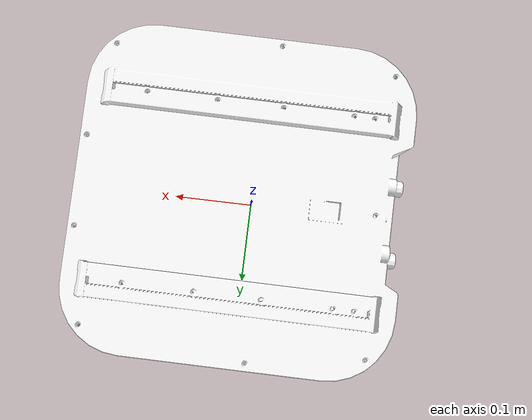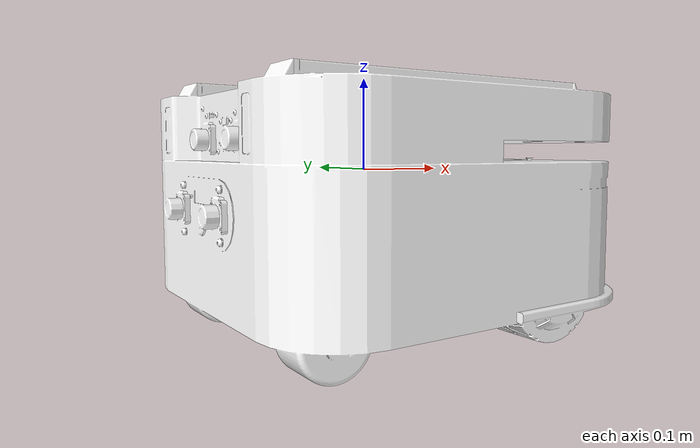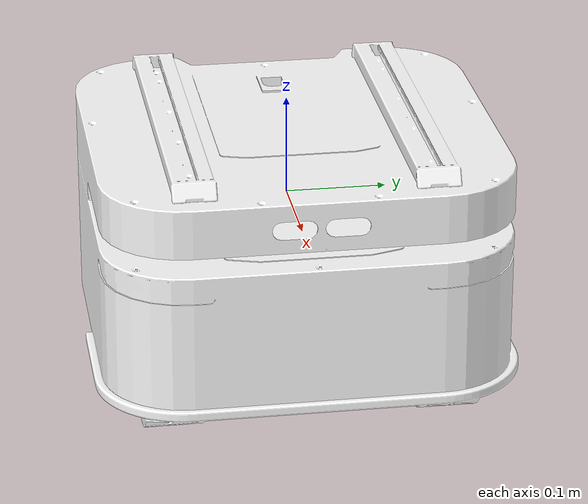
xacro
<?xml version="1.0" encoding="utf-8"?>
<robot name="tracer_mini" xmlns:xacro="http://ros.org/wiki/xacro">

  <xacro:include filename="$(find tracer_mini)/urdf/tracer_mini.gazebo.xacro"/>

  <material name="black">
    <color rgba= "0 0 0 1"/>
  </material>

  <material name="white">
    <color rgba="1 1 1 1"/>
  </material>

  <material name="light_black">
    <color rgba="0.4 0.4 0.4 1.0" />
  </material>

  <link name = "base_footprint" />

  <link
    name="base_link">
    <inertial>
      <origin
        xyz="0.0159871268556407 1.58872275333177E-05 -0.0309422377248268"
        rpy="0 0 0" />
      <mass
        value="24.3948952632956" />
      <inertia
        ixx="0.330322675681357"
        ixy="-8.93178579768822E-06"
        ixz="0.010552102579657"
        iyy="0.327495768676369"
        iyz="1.4143030767649E-06"
        izz="0.614434971559817" />
    </inertial>
    <visual>
      <origin
        xyz="0 0 0"
        rpy="0 0 0" />
      <geometry>
        <mesh
          filename="package://tracer_mini/meshes/base_link.STL" />
      </geometry>
      <material
        name="white"/>
    </visual>
    <collision>
      <origin
        xyz="0 0 0"
        rpy="0 0 0" />
      <geometry>
        <mesh
          filename="package://tracer_mini/meshes/base_link.STL" />
      </geometry>
    </collision>
  </link>
  <joint
    name="base_joint"
    type="fixed">
    <parent
      link="base_footprint"/>
    <child
      link="base_link"/>
    <origin
      xyz="0.0 0.0 0.010"
      rpy="0 0 0"/>
  </joint>

  <link
    name="fl_Link">
    <inertial>
      <origin
        xyz="-0.11068 0.066655 0.10537"
        rpy="0 0 0" />
      <mass
        value="17.416" />
      <inertia
        ixx="0.24331"
        ixy="0.010574"
        ixz="8.9424E-06"
        iyy="0.43808"
        iyz="-1.4143E-06"
        izz="0.2374" />
    </inertial>
    <visual>
      <origin
        xyz="0 0 0"
        rpy="0 0 0" />
      <geometry>
        <cylinder radius="0.01" length="0.01"/>
      </geometry>
      <material
        name="black"/>
    </visual>
    <collision>
      <origin
        xyz="0 0 0"
        rpy="0 0 0" />
      <geometry>
      <cylinder radius="0.01" length="0.01"/>
      </geometry>
    </collision>
  </link>
  <joint
    name="fl_joint"
    type="continuous">
    <origin
      xyz="0.12914 0.1312 -0.1275"
      rpy="1.5708 0 0" />
    <parent
      link="base_link" />
    <child
      link="fl_Link" />
    <axis
      xyz="0 0 -1" />
  </joint>
  <link
    name="fr_Link">
    <inertial>
      <origin
        xyz="-0.11068 0.066655 -0.10543"
        rpy="0 0 0" />
      <mass
        value="17.416" />
      <inertia
        ixx="0.24331"
        ixy="0.010574"
        ixz="8.9424E-06"
        iyy="0.43808"
        iyz="-1.4143E-06"
        izz="0.2374" />
    </inertial>
    <visual>
      <origin
        xyz="0 0 0"
        rpy="0 0 0" />
      <geometry>
        <cylinder radius="0.01" length="0.01"/>
      </geometry>
      <material
        name="black"/>
    </visual>
    <collision>
      <origin
        xyz="0 0 0"
        rpy="0 0 0" />
      <geometry>
        <cylinder radius="0.05" length="0.05"/>
      </geometry>
    </collision>
  </link>
  <joint
    name="fr_joint"
    type="continuous">
    <origin
      xyz="0.12914 -0.1312 -0.1275"
      rpy="1.5708 0 0" />
    <parent
      link="base_link" />
    <child
      link="fr_Link" />
    <axis
      xyz="0 0 -1" />
  </joint>
  <link
    name="rr_Link">
    <inertial>
      <origin
        xyz="0.14232 0.089655 -0.12503"
        rpy="0 0 0" />
      <mass
        value="17.416" />
      <inertia
        ixx="0.24331"
        ixy="0.010574"
        ixz="8.9424E-06"
        iyy="0.43808"
        iyz="-1.4143E-06"
        izz="0.2374" />
    </inertial>
    <visual>
      <origin
        xyz="0 0 0"
        rpy="0 0 0" />
      <geometry>
        <cylinder radius="0.01" length="0.01"/>
      </geometry>
      <material
        name="light_black"/>
    </visual>
    <collision>
      <origin
        xyz="0 0 0"
        rpy="0 0 0" />
      <geometry>
        <cylinder radius="0.03" length="0.03"/>
      </geometry>
    </collision>
  </link>
  <joint
    name="rr_joint"
    type="continuous">
    <origin
      xyz="-0.12386 -0.125 -0.1505"
      rpy="1.5708 0 0" />
    <parent
      link="base_link" />
    <child
      link="rr_Link" />
    <axis
      xyz="0 0 1" />
  </joint>
  <link
    name="rl_Link">
    <inertial>
      <origin
        xyz="0.14232 0.089655 0.12497"
        rpy="0 0 0" />
      <mass
        value="17.416" />
      <inertia
        ixx="0.24331"
        ixy="0.010574"
        ixz="8.9424E-06"
        iyy="0.43808"
        iyz="-1.4143E-06"
        izz="0.2374" />
    </inertial>
    <visual>
      <origin
        xyz="0 0 0"
        rpy="0 0 0" />
      <geometry>
        <cylinder radius="0.01" length="0.01"/>
      </geometry>
      <material
        name="light_black"/>
    </visual>
    <collision>
      <origin
        xyz="0 0 0"
        rpy="0 0 0" />
      <geometry>
        <cylinder radius="0.03" length="0.03"/>
      </geometry>
    </collision>
  </link>
  <joint
    name="rl_joint"
    type="continuous">
    <origin
      xyz="-0.12386 0.125 -0.1505"
      rpy="1.5708 0 0" />
    <parent
      link="base_link" />
    <child
      link="rl_Link" />
    <axis
      xyz="0 0 1" />
  </joint>
</robot>
